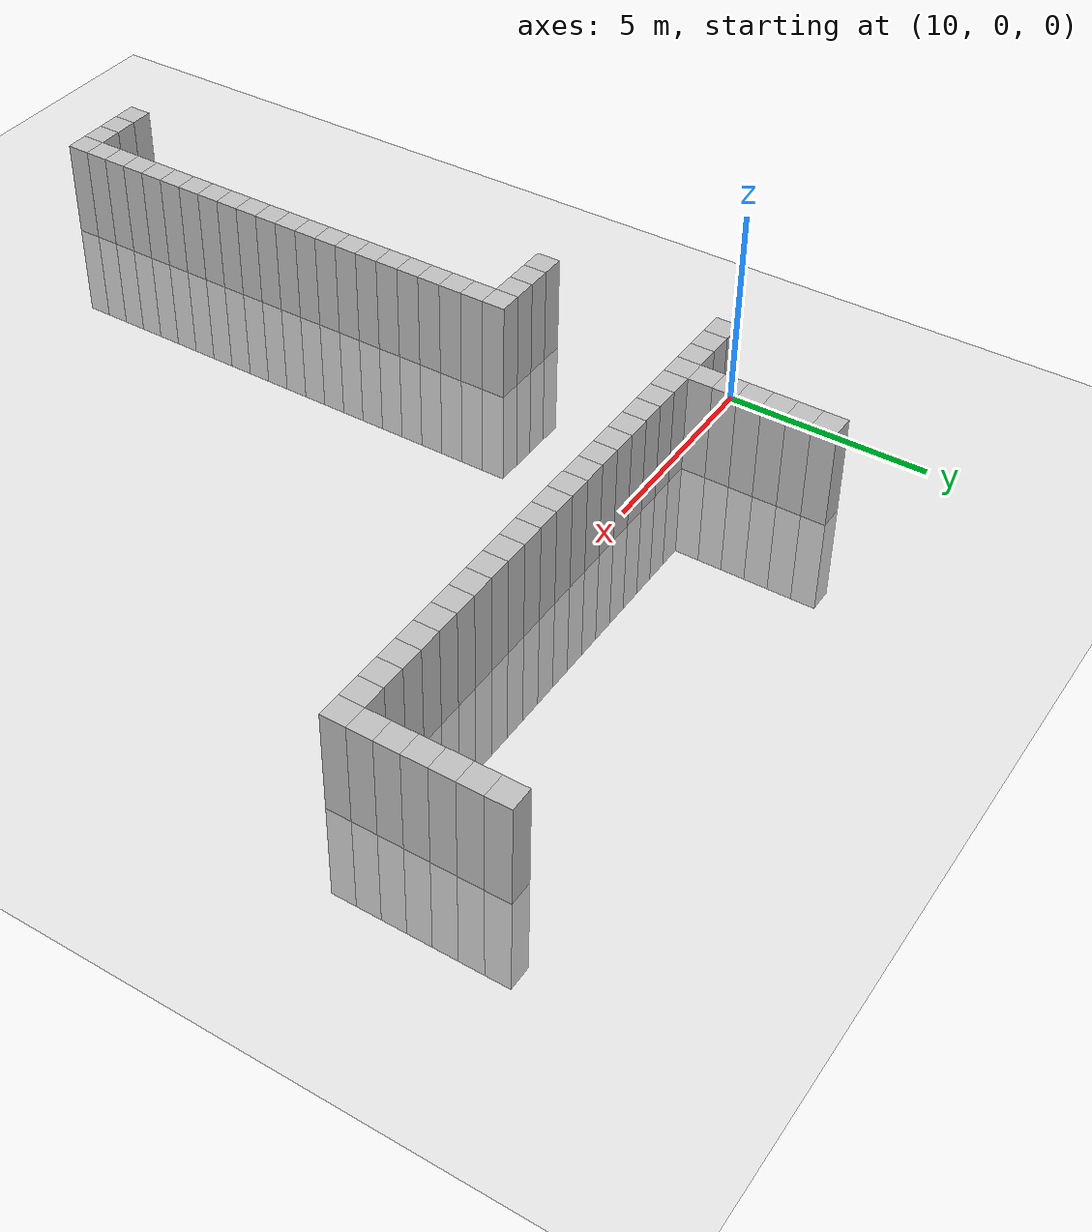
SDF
<sdf version="1.6">
 <world name="default">
  <model name="ground_plane">
   <static>1</static>
   <link name="link">
    <collision name="collision">
     <geometry><plane><normal>0 0 1</normal><size>100 100</size></plane></geometry>
     <surface><friction><ode><mu>100</mu><mu2>50</mu2></ode></friction></surface>
    </collision>
    <visual name="visual">
     <cast_shadows>0</cast_shadows>
     <geometry><plane><normal>0 0 1</normal><size>100 100</size></plane></geometry>
     <material>
      <script><uri>file://media/materials/scripts/gazebo.material</uri><name>Gazebo/Grey</name></script>
     </material>
    </visual>
   </link>
  </model>
  <model name="unit_cylinder_94">
   <static>1</static>
   <pose>10.8 0 0 0 -0 0</pose>
   <link name="link">
    <inertial>
     <mass>1</mass>
     <inertia><ixx>0.145833</ixx><ixy>0</ixy><ixz>0</ixz><iyy>0.145833</iyy><iyz>0</iyz><izz>0.125</izz></inertia>
    </inertial>
    <collision name="collision"><geometry><box><size>0.6 0.6 5</size></box></geometry></collision>
    <visual name="visual">
     <geometry><box><size>0.6 0.6 5</size></box></geometry>
     <material><ambient>0.753 0.753 0.753 1</ambient><diffuse>0.753 0.753 0.753 1</diffuse></material>
     <material>
      <script><name>Gazebo/Grey</name><uri>file://media/materials/scripts/gazebo.material</uri></script>
     </material>
    </visual>
   </link>
  </model>
  <model name="unit_cylinder_97">
   <static>1</static>
   <pose>11.4 0 0 0 -0 0</pose>
   <link name="link">
    <inertial>
     <mass>1</mass>
     <inertia><ixx>0.145833</ixx><ixy>0</ixy><ixz>0</ixz><iyy>0.145833</iyy><iyz>0</iyz><izz>0.125</izz></inertia>
    </inertial>
    <collision name="collision"><geometry><box><size>0.6 0.6 5</size></box></geometry></collision>
    <visual name="visual">
     <geometry><box><size>0.6 0.6 5</size></box></geometry>
     <material><ambient>0.753 0.753 0.753 1</ambient><diffuse>0.753 0.753 0.753 1</diffuse></material>
     <material>
      <script><name>Gazebo/Grey</name><uri>file://media/materials/scripts/gazebo.material</uri></script>
     </material>
    </visual>
   </link>
  </model>
  <model name="unit_cylinder_100">
   <static>1</static>
   <pose>12 0 0 0 -0 0</pose>
   <link name="link">
    <inertial>
     <mass>1</mass>
     <inertia><ixx>0.145833</ixx><ixy>0</ixy><ixz>0</ixz><iyy>0.145833</iyy><iyz>0</iyz><izz>0.125</izz></inertia>
    </inertial>
    <collision name="collision"><geometry><box><size>0.6 0.6 5</size></box></geometry></collision>
    <visual name="visual">
     <geometry><box><size>0.6 0.6 5</size></box></geometry>
     <material><ambient>0.753 0.753 0.753 1</ambient><diffuse>0.753 0.753 0.753 1</diffuse></material>
     <material>
      <script><name>Gazebo/Grey</name><uri>file://media/materials/scripts/gazebo.material</uri></script>
     </material>
    </visual>
   </link>
  </model>
  <model name="unit_cylinder_103">
   <static>1</static>
   <pose>12.6 0 0 0 -0 0</pose>
   <link name="link">
    <inertial>
     <mass>1</mass>
     <inertia><ixx>0.145833</ixx><ixy>0</ixy><ixz>0</ixz><iyy>0.145833</iyy><iyz>0</iyz><izz>0.125</izz></inertia>
    </inertial>
    <collision name="collision"><geometry><box><size>0.6 0.6 5</size></box></geometry></collision>
    <visual name="visual">
     <geometry><box><size>0.6 0.6 5</size></box></geometry>
     <material><ambient>0.753 0.753 0.753 1</ambient><diffuse>0.753 0.753 0.753 1</diffuse></material>
     <material>
      <script><name>Gazebo/Grey</name><uri>file://media/materials/scripts/gazebo.material</uri></script>
     </material>
    </visual>
   </link>
  </model>
  <model name="unit_cylinder_104">
   <static>1</static>
   <pose>12.6 0.6 0 0 -0 0</pose>
   <link name="link">
    <inertial>
     <mass>1</mass>
     <inertia><ixx>0.145833</ixx><ixy>0</ixy><ixz>0</ixz><iyy>0.145833</iyy><iyz>0</iyz><izz>0.125</izz></inertia>
    </inertial>
    <collision name="collision"><geometry><box><size>0.6 0.6 5</size></box></geometry></collision>
    <visual name="visual">
     <geometry><box><size>0.6 0.6 5</size></box></geometry>
     <material><ambient>0.753 0.753 0.753 1</ambient><diffuse>0.753 0.753 0.753 1</diffuse></material>
     <material>
      <script><name>Gazebo/Grey</name><uri>file://media/materials/scripts/gazebo.material</uri></script>
     </material>
    </visual>
   </link>
  </model>
  <model name="unit_cylinder_105">
   <static>1</static>
   <pose>12.6 1.2 0 0 -0 0</pose>
   <link name="link">
    <inertial>
     <mass>1</mass>
     <inertia><ixx>0.145833</ixx><ixy>0</ixy><ixz>0</ixz><iyy>0.145833</iyy><iyz>0</iyz><izz>0.125</izz></inertia>
    </inertial>
    <collision name="collision"><geometry><box><size>0.6 0.6 5</size></box></geometry></collision>
    <visual name="visual">
     <geometry><box><size>0.6 0.6 5</size></box></geometry>
     <material><ambient>0.753 0.753 0.753 1</ambient><diffuse>0.753 0.753 0.753 1</diffuse></material>
     <material>
      <script><name>Gazebo/Grey</name><uri>file://media/materials/scripts/gazebo.material</uri></script>
     </material>
    </visual>
   </link>
  </model>
  <model name="unit_cylinder_106">
   <static>1</static>
   <pose>12.6 1.8 0 0 -0 0</pose>
   <link name="link">
    <inertial>
     <mass>1</mass>
     <inertia><ixx>0.145833</ixx><ixy>0</ixy><ixz>0</ixz><iyy>0.145833</iyy><iyz>0</iyz><izz>0.125</izz></inertia>
    </inertial>
    <collision name="collision"><geometry><box><size>0.6 0.6 5</size></box></geometry></collision>
    <visual name="visual">
     <geometry><box><size>0.6 0.6 5</size></box></geometry>
     <material><ambient>0.753 0.753 0.753 1</ambient><diffuse>0.753 0.753 0.753 1</diffuse></material>
     <material>
      <script><name>Gazebo/Grey</name><uri>file://media/materials/scripts/gazebo.material</uri></script>
     </material>
    </visual>
   </link>
  </model>
  <model name="unit_cylinder_107">
   <static>1</static>
   <pose>12.6 2.4 0 0 -0 0</pose>
   <link name="link">
    <inertial>
     <mass>1</mass>
     <inertia><ixx>0.145833</ixx><ixy>0</ixy><ixz>0</ixz><iyy>0.145833</iyy><iyz>0</iyz><izz>0.125</izz></inertia>
    </inertial>
    <collision name="collision"><geometry><box><size>0.6 0.6 5</size></box></geometry></collision>
    <visual name="visual">
     <geometry><box><size>0.6 0.6 5</size></box></geometry>
     <material><ambient>0.753 0.753 0.753 1</ambient><diffuse>0.753 0.753 0.753 1</diffuse></material>
     <material>
      <script><name>Gazebo/Grey</name><uri>file://media/materials/scripts/gazebo.material</uri></script>
     </material>
    </visual>
   </link>
  </model>
  <model name="unit_cylinder_108">
   <static>1</static>
   <pose>12.6 3 0 0 -0 0</pose>
   <link name="link">
    <inertial>
     <mass>1</mass>
     <inertia><ixx>0.145833</ixx><ixy>0</ixy><ixz>0</ixz><iyy>0.145833</iyy><iyz>0</iyz><izz>0.125</izz></inertia>
    </inertial>
    <collision name="collision"><geometry><box><size>0.6 0.6 5</size></box></geometry></collision>
    <visual name="visual">
     <geometry><box><size>0.6 0.6 5</size></box></geometry>
     <material><ambient>0.753 0.753 0.753 1</ambient><diffuse>0.753 0.753 0.753 1</diffuse></material>
     <material>
      <script><name>Gazebo/Grey</name><uri>file://media/materials/scripts/gazebo.material</uri></script>
     </material>
    </visual>
   </link>
  </model>
  <model name="unit_cylinder_109">
   <static>1</static>
   <pose>12.6 3.6 0 0 -0 0</pose>
   <link name="link">
    <inertial>
     <mass>1</mass>
     <inertia><ixx>0.145833</ixx><ixy>0</ixy><ixz>0</ixz><iyy>0.145833</iyy><iyz>0</iyz><izz>0.125</izz></inertia>
    </inertial>
    <collision name="collision"><geometry><box><size>0.6 0.6 5</size></box></geometry></collision>
    <visual name="visual">
     <geometry><box><size>0.6 0.6 5</size></box></geometry>
     <material><ambient>0.753 0.753 0.753 1</ambient><diffuse>0.753 0.753 0.753 1</diffuse></material>
     <material>
      <script><name>Gazebo/Grey</name><uri>file://media/materials/scripts/gazebo.material</uri></script>
     </material>
    </visual>
   </link>
  </model>
  <model name="unit_cylinder_146">
   <static>1</static>
   <pose>13.2 0 0 0 -0 0</pose>
   <link name="link">
    <inertial>
     <mass>1</mass>
     <inertia><ixx>0.145833</ixx><ixy>0</ixy><ixz>0</ixz><iyy>0.145833</iyy><iyz>0</iyz><izz>0.125</izz></inertia>
    </inertial>
    <collision name="collision"><geometry><box><size>0.6 0.6 5</size></box></geometry></collision>
    <visual name="visual">
     <geometry><box><size>0.6 0.6 5</size></box></geometry>
     <material><ambient>0.753 0.753 0.753 1</ambient><diffuse>0.753 0.753 0.753 1</diffuse></material>
     <material>
      <script><name>Gazebo/Grey</name><uri>file://media/materials/scripts/gazebo.material</uri></script>
     </material>
    </visual>
   </link>
  </model>
  <model name="unit_cylinder_149">
   <static>1</static>
   <pose>13.8 0 0 0 -0 0</pose>
   <link name="link">
    <inertial>
     <mass>1</mass>
     <inertia><ixx>0.145833</ixx><ixy>0</ixy><ixz>0</ixz><iyy>0.145833</iyy><iyz>0</iyz><izz>0.125</izz></inertia>
    </inertial>
    <collision name="collision"><geometry><box><size>0.6 0.6 5</size></box></geometry></collision>
    <visual name="visual">
     <geometry><box><size>0.6 0.6 5</size></box></geometry>
     <material><ambient>0.753 0.753 0.753 1</ambient><diffuse>0.753 0.753 0.753 1</diffuse></material>
     <material>
      <script><name>Gazebo/Grey</name><uri>file://media/materials/scripts/gazebo.material</uri></script>
     </material>
    </visual>
   </link>
  </model>
  <model name="unit_cylinder_152">
   <static>1</static>
   <pose>14.4 0 0 0 -0 0</pose>
   <link name="link">
    <inertial>
     <mass>1</mass>
     <inertia><ixx>0.145833</ixx><ixy>0</ixy><ixz>0</ixz><iyy>0.145833</iyy><iyz>0</iyz><izz>0.125</izz></inertia>
    </inertial>
    <collision name="collision"><geometry><box><size>0.6 0.6 5</size></box></geometry></collision>
    <visual name="visual">
     <geometry><box><size>0.6 0.6 5</size></box></geometry>
     <material><ambient>0.753 0.753 0.753 1</ambient><diffuse>0.753 0.753 0.753 1</diffuse></material>
     <material>
      <script><name>Gazebo/Grey</name><uri>file://media/materials/scripts/gazebo.material</uri></script>
     </material>
    </visual>
   </link>
  </model>
  <model name="unit_cylinder_155">
   <static>1</static>
   <pose>15 0 0 0 -0 0</pose>
   <link name="link">
    <inertial>
     <mass>1</mass>
     <inertia><ixx>0.145833</ixx><ixy>0</ixy><ixz>0</ixz><iyy>0.145833</iyy><iyz>0</iyz><izz>0.125</izz></inertia>
    </inertial>
    <collision name="collision"><geometry><box><size>0.6 0.6 5</size></box></geometry></collision>
    <visual name="visual">
     <geometry><box><size>0.6 0.6 5</size></box></geometry>
     <material><ambient>0.753 0.753 0.753 1</ambient><diffuse>0.753 0.753 0.753 1</diffuse></material>
     <material>
      <script><name>Gazebo/Grey</name><uri>file://media/materials/scripts/gazebo.material</uri></script>
     </material>
    </visual>
   </link>
  </model>
  <model name="unit_cylinder_158">
   <static>1</static>
   <pose>15.6 0 0 0 -0 0</pose>
   <link name="link">
    <inertial>
     <mass>1</mass>
     <inertia><ixx>0.145833</ixx><ixy>0</ixy><ixz>0</ixz><iyy>0.145833</iyy><iyz>0</iyz><izz>0.125</izz></inertia>
    </inertial>
    <collision name="collision"><geometry><box><size>0.6 0.6 5</size></box></geometry></collision>
    <visual name="visual">
     <geometry><box><size>0.6 0.6 5</size></box></geometry>
     <material><ambient>0.753 0.753 0.753 1</ambient><diffuse>0.753 0.753 0.753 1</diffuse></material>
     <material>
      <script><name>Gazebo/Grey</name><uri>file://media/materials/scripts/gazebo.material</uri></script>
     </material>
    </visual>
   </link>
  </model>
  <model name="unit_cylinder_161">
   <static>1</static>
   <pose>16.2 0 0 0 -0 0</pose>
   <link name="link">
    <inertial>
     <mass>1</mass>
     <inertia><ixx>0.145833</ixx><ixy>0</ixy><ixz>0</ixz><iyy>0.145833</iyy><iyz>0</iyz><izz>0.125</izz></inertia>
    </inertial>
    <collision name="collision"><geometry><box><size>0.6 0.6 5</size></box></geometry></collision>
    <visual name="visual">
     <geometry><box><size>0.6 0.6 5</size></box></geometry>
     <material><ambient>0.753 0.753 0.753 1</ambient><diffuse>0.753 0.753 0.753 1</diffuse></material>
     <material>
      <script><name>Gazebo/Grey</name><uri>file://media/materials/scripts/gazebo.material</uri></script>
     </material>
    </visual>
   </link>
  </model>
  <model name="unit_cylinder_164">
   <static>1</static>
   <pose>16.8 0 0 0 -0 0</pose>
   <link name="link">
    <inertial>
     <mass>1</mass>
     <inertia><ixx>0.145833</ixx><ixy>0</ixy><ixz>0</ixz><iyy>0.145833</iyy><iyz>0</iyz><izz>0.125</izz></inertia>
    </inertial>
    <collision name="collision"><geometry><box><size>0.6 0.6 5</size></box></geometry></collision>
    <visual name="visual">
     <geometry><box><size>0.6 0.6 5</size></box></geometry>
     <material><ambient>0.753 0.753 0.753 1</ambient><diffuse>0.753 0.753 0.753 1</diffuse></material>
     <material>
      <script><name>Gazebo/Grey</name><uri>file://media/materials/scripts/gazebo.material</uri></script>
     </material>
    </visual>
   </link>
  </model>
  <model name="unit_cylinder_167">
   <static>1</static>
   <pose>17.4 0 0 0 -0 0</pose>
   <link name="link">
    <inertial>
     <mass>1</mass>
     <inertia><ixx>0.145833</ixx><ixy>0</ixy><ixz>0</ixz><iyy>0.145833</iyy><iyz>0</iyz><izz>0.125</izz></inertia>
    </inertial>
    <collision name="collision"><geometry><box><size>0.6 0.6 5</size></box></geometry></collision>
    <visual name="visual">
     <geometry><box><size>0.6 0.6 5</size></box></geometry>
     <material><ambient>0.753 0.753 0.753 1</ambient><diffuse>0.753 0.753 0.753 1</diffuse></material>
     <material>
      <script><name>Gazebo/Grey</name><uri>file://media/materials/scripts/gazebo.material</uri></script>
     </material>
    </visual>
   </link>
  </model>
  <model name="unit_cylinder_170">
   <static>1</static>
   <pose>18 0 0 0 -0 0</pose>
   <link name="link">
    <inertial>
     <mass>1</mass>
     <inertia><ixx>0.145833</ixx><ixy>0</ixy><ixz>0</ixz><iyy>0.145833</iyy><iyz>0</iyz><izz>0.125</izz></inertia>
    </inertial>
    <collision name="collision"><geometry><box><size>0.6 0.6 5</size></box></geometry></collision>
    <visual name="visual">
     <geometry><box><size>0.6 0.6 5</size></box></geometry>
     <material><ambient>0.753 0.753 0.753 1</ambient><diffuse>0.753 0.753 0.753 1</diffuse></material>
     <material>
      <script><name>Gazebo/Grey</name><uri>file://media/materials/scripts/gazebo.material</uri></script>
     </material>
    </visual>
   </link>
  </model>
  <model name="unit_cylinder_173">
   <static>1</static>
   <pose>18.6 0 0 0 -0 0</pose>
   <link name="link">
    <inertial>
     <mass>1</mass>
     <inertia><ixx>0.145833</ixx><ixy>0</ixy><ixz>0</ixz><iyy>0.145833</iyy><iyz>0</iyz><izz>0.125</izz></inertia>
    </inertial>
    <collision name="collision"><geometry><box><size>0.6 0.6 5</size></box></geometry></collision>
    <visual name="visual">
     <geometry><box><size>0.6 0.6 5</size></box></geometry>
     <material><ambient>0.753 0.753 0.753 1</ambient><diffuse>0.753 0.753 0.753 1</diffuse></material>
     <material>
      <script><name>Gazebo/Grey</name><uri>file://media/materials/scripts/gazebo.material</uri></script>
     </material>
    </visual>
   </link>
  </model>
  <model name="unit_cylinder_176">
   <static>1</static>
   <pose>19.2 0 0 0 -0 0</pose>
   <link name="link">
    <inertial>
     <mass>1</mass>
     <inertia><ixx>0.145833</ixx><ixy>0</ixy><ixz>0</ixz><iyy>0.145833</iyy><iyz>0</iyz><izz>0.125</izz></inertia>
    </inertial>
    <collision name="collision"><geometry><box><size>0.6 0.6 5</size></box></geometry></collision>
    <visual name="visual">
     <geometry><box><size>0.6 0.6 5</size></box></geometry>
     <material><ambient>0.753 0.753 0.753 1</ambient><diffuse>0.753 0.753 0.753 1</diffuse></material>
     <material>
      <script><name>Gazebo/Grey</name><uri>file://media/materials/scripts/gazebo.material</uri></script>
     </material>
    </visual>
   </link>
  </model>
  <model name="unit_cylinder_179">
   <static>1</static>
   <pose>19.8 0 0 0 -0 0</pose>
   <link name="link">
    <inertial>
     <mass>1</mass>
     <inertia><ixx>0.145833</ixx><ixy>0</ixy><ixz>0</ixz><iyy>0.145833</iyy><iyz>0</iyz><izz>0.125</izz></inertia>
    </inertial>
    <collision name="collision"><geometry><box><size>0.6 0.6 5</size></box></geometry></collision>
    <visual name="visual">
     <geometry><box><size>0.6 0.6 5</size></box></geometry>
     <material><ambient>0.753 0.753 0.753 1</ambient><diffuse>0.753 0.753 0.753 1</diffuse></material>
     <material>
      <script><name>Gazebo/Grey</name><uri>file://media/materials/scripts/gazebo.material</uri></script>
     </material>
    </visual>
   </link>
  </model>
  <model name="unit_cylinder_182">
   <static>1</static>
   <pose>20.4 0 0 0 -0 0</pose>
   <link name="link">
    <inertial>
     <mass>1</mass>
     <inertia><ixx>0.145833</ixx><ixy>0</ixy><ixz>0</ixz><iyy>0.145833</iyy><iyz>0</iyz><izz>0.125</izz></inertia>
    </inertial>
    <collision name="collision"><geometry><box><size>0.6 0.6 5</size></box></geometry></collision>
    <visual name="visual">
     <geometry><box><size>0.6 0.6 5</size></box></geometry>
     <material><ambient>0.753 0.753 0.753 1</ambient><diffuse>0.753 0.753 0.753 1</diffuse></material>
     <material>
      <script><name>Gazebo/Grey</name><uri>file://media/materials/scripts/gazebo.material</uri></script>
     </material>
    </visual>
   </link>
  </model>
  <model name="unit_cylinder_185">
   <static>1</static>
   <pose>21 0 0 0 -0 0</pose>
   <link name="link">
    <inertial>
     <mass>1</mass>
     <inertia><ixx>0.145833</ixx><ixy>0</ixy><ixz>0</ixz><iyy>0.145833</iyy><iyz>0</iyz><izz>0.125</izz></inertia>
    </inertial>
    <collision name="collision"><geometry><box><size>0.6 0.6 5</size></box></geometry></collision>
    <visual name="visual">
     <geometry><box><size>0.6 0.6 5</size></box></geometry>
     <material><ambient>0.753 0.753 0.753 1</ambient><diffuse>0.753 0.753 0.753 1</diffuse></material>
     <material>
      <script><name>Gazebo/Grey</name><uri>file://media/materials/scripts/gazebo.material</uri></script>
     </material>
    </visual>
   </link>
  </model>
  <model name="unit_cylinder_188">
   <static>1</static>
   <pose>21.6 0 0 0 -0 0</pose>
   <link name="link">
    <inertial>
     <mass>1</mass>
     <inertia><ixx>0.145833</ixx><ixy>0</ixy><ixz>0</ixz><iyy>0.145833</iyy><iyz>0</iyz><izz>0.125</izz></inertia>
    </inertial>
    <collision name="collision"><geometry><box><size>0.6 0.6 5</size></box></geometry></collision>
    <visual name="visual">
     <geometry><box><size>0.6 0.6 5</size></box></geometry>
     <material><ambient>0.753 0.753 0.753 1</ambient><diffuse>0.753 0.753 0.753 1</diffuse></material>
     <material>
      <script><name>Gazebo/Grey</name><uri>file://media/materials/scripts/gazebo.material</uri></script>
     </material>
    </visual>
   </link>
  </model>
  <model name="unit_cylinder_191">
   <static>1</static>
   <pose>22.2 0 0 0 -0 0</pose>
   <link name="link">
    <inertial>
     <mass>1</mass>
     <inertia><ixx>0.145833</ixx><ixy>0</ixy><ixz>0</ixz><iyy>0.145833</iyy><iyz>0</iyz><izz>0.125</izz></inertia>
    </inertial>
    <collision name="collision"><geometry><box><size>0.6 0.6 5</size></box></geometry></collision>
    <visual name="visual">
     <geometry><box><size>0.6 0.6 5</size></box></geometry>
     <material><ambient>0.753 0.753 0.753 1</ambient><diffuse>0.753 0.753 0.753 1</diffuse></material>
     <material>
      <script><name>Gazebo/Grey</name><uri>file://media/materials/scripts/gazebo.material</uri></script>
     </material>
    </visual>
   </link>
  </model>
  <model name="unit_cylinder_194">
   <static>1</static>
   <pose>22.8 0 0 0 -0 0</pose>
   <link name="link">
    <inertial>
     <mass>1</mass>
     <inertia><ixx>0.145833</ixx><ixy>0</ixy><ixz>0</ixz><iyy>0.145833</iyy><iyz>0</iyz><izz>0.125</izz></inertia>
    </inertial>
    <collision name="collision"><geometry><box><size>0.6 0.6 5</size></box></geometry></collision>
    <visual name="visual">
     <geometry><box><size>0.6 0.6 5</size></box></geometry>
     <material><ambient>0.753 0.753 0.753 1</ambient><diffuse>0.753 0.753 0.753 1</diffuse></material>
     <material>
      <script><name>Gazebo/Grey</name><uri>file://media/materials/scripts/gazebo.material</uri></script>
     </material>
    </visual>
   </link>
  </model>
  <model name="unit_cylinder_197">
   <static>1</static>
   <pose>23.4 0 0 0 -0 0</pose>
   <link name="link">
    <inertial>
     <mass>1</mass>
     <inertia><ixx>0.145833</ixx><ixy>0</ixy><ixz>0</ixz><iyy>0.145833</iyy><iyz>0</iyz><izz>0.125</izz></inertia>
    </inertial>
    <collision name="collision"><geometry><box><size>0.6 0.6 5</size></box></geometry></collision>
    <visual name="visual">
     <geometry><box><size>0.6 0.6 5</size></box></geometry>
     <material><ambient>0.753 0.753 0.753 1</ambient><diffuse>0.753 0.753 0.753 1</diffuse></material>
     <material>
      <script><name>Gazebo/Grey</name><uri>file://media/materials/scripts/gazebo.material</uri></script>
     </material>
    </visual>
   </link>
  </model>
  <model name="unit_cylinder_200">
   <static>1</static>
   <pose>24 0 0 0 -0 0</pose>
   <link name="link">
    <inertial>
     <mass>1</mass>
     <inertia><ixx>0.145833</ixx><ixy>0</ixy><ixz>0</ixz><iyy>0.145833</iyy><iyz>0</iyz><izz>0.125</izz></inertia>
    </inertial>
    <collision name="collision"><geometry><box><size>0.6 0.6 5</size></box></geometry></collision>
    <visual name="visual">
     <geometry><box><size>0.6 0.6 5</size></box></geometry>
     <material><ambient>0.753 0.753 0.753 1</ambient><diffuse>0.753 0.753 0.753 1</diffuse></material>
     <material>
      <script><name>Gazebo/Grey</name><uri>file://media/materials/scripts/gazebo.material</uri></script>
     </material>
    </visual>
   </link>
  </model>
  <model name="unit_cylinder_203">
   <static>1</static>
   <pose>24.6 0 0 0 -0 0</pose>
   <link name="link">
    <inertial>
     <mass>1</mass>
     <inertia><ixx>0.145833</ixx><ixy>0</ixy><ixz>0</ixz><iyy>0.145833</iyy><iyz>0</iyz><izz>0.125</izz></inertia>
    </inertial>
    <collision name="collision"><geometry><box><size>0.6 0.6 5</size></box></geometry></collision>
    <visual name="visual">
     <geometry><box><size>0.6 0.6 5</size></box></geometry>
     <material><ambient>0.753 0.753 0.753 1</ambient><diffuse>0.753 0.753 0.753 1</diffuse></material>
     <material>
      <script><name>Gazebo/Grey</name><uri>file://media/materials/scripts/gazebo.material</uri></script>
     </material>
    </visual>
   </link>
  </model>
  <model name="unit_cylinder_206">
   <static>1</static>
   <pose>25.2 0 0 0 -0 0</pose>
   <link name="link">
    <inertial>
     <mass>1</mass>
     <inertia><ixx>0.145833</ixx><ixy>0</ixy><ixz>0</ixz><iyy>0.145833</iyy><iyz>0</iyz><izz>0.125</izz></inertia>
    </inertial>
    <collision name="collision"><geometry><box><size>0.6 0.6 5</size></box></geometry></collision>
    <visual name="visual">
     <geometry><box><size>0.6 0.6 5</size></box></geometry>
     <material><ambient>0.753 0.753 0.753 1</ambient><diffuse>0.753 0.753 0.753 1</diffuse></material>
     <material>
      <script><name>Gazebo/Grey</name><uri>file://media/materials/scripts/gazebo.material</uri></script>
     </material>
    </visual>
   </link>
  </model>
  <model name="unit_cylinder_207">
   <static>1</static>
   <pose>25.2 0.6 0 0 -0 0</pose>
   <link name="link">
    <inertial>
     <mass>1</mass>
     <inertia><ixx>0.145833</ixx><ixy>0</ixy><ixz>0</ixz><iyy>0.145833</iyy><iyz>0</iyz><izz>0.125</izz></inertia>
    </inertial>
    <collision name="collision"><geometry><box><size>0.6 0.6 5</size></box></geometry></collision>
    <visual name="visual">
     <geometry><box><size>0.6 0.6 5</size></box></geometry>
     <material><ambient>0.753 0.753 0.753 1</ambient><diffuse>0.753 0.753 0.753 1</diffuse></material>
     <material>
      <script><name>Gazebo/Grey</name><uri>file://media/materials/scripts/gazebo.material</uri></script>
     </material>
    </visual>
   </link>
  </model>
  <model name="unit_cylinder_208">
   <static>1</static>
   <pose>25.2 1.2 0 0 -0 0</pose>
   <link name="link">
    <inertial>
     <mass>1</mass>
     <inertia><ixx>0.145833</ixx><ixy>0</ixy><ixz>0</ixz><iyy>0.145833</iyy><iyz>0</iyz><izz>0.125</izz></inertia>
    </inertial>
    <collision name="collision"><geometry><box><size>0.6 0.6 5</size></box></geometry></collision>
    <visual name="visual">
     <geometry><box><size>0.6 0.6 5</size></box></geometry>
     <material><ambient>0.753 0.753 0.753 1</ambient><diffuse>0.753 0.753 0.753 1</diffuse></material>
     <material>
      <script><name>Gazebo/Grey</name><uri>file://media/materials/scripts/gazebo.material</uri></script>
     </material>
    </visual>
   </link>
  </model>
  <model name="unit_cylinder_209">
   <static>1</static>
   <pose>25.2 1.8 0 0 -0 0</pose>
   <link name="link">
    <inertial>
     <mass>1</mass>
     <inertia><ixx>0.145833</ixx><ixy>0</ixy><ixz>0</ixz><iyy>0.145833</iyy><iyz>0</iyz><izz>0.125</izz></inertia>
    </inertial>
    <collision name="collision"><geometry><box><size>0.6 0.6 5</size></box></geometry></collision>
    <visual name="visual">
     <geometry><box><size>0.6 0.6 5</size></box></geometry>
     <material><ambient>0.753 0.753 0.753 1</ambient><diffuse>0.753 0.753 0.753 1</diffuse></material>
     <material>
      <script><name>Gazebo/Grey</name><uri>file://media/materials/scripts/gazebo.material</uri></script>
     </material>
    </visual>
   </link>
  </model>
  <model name="unit_cylinder_210">
   <static>1</static>
   <pose>25.2 2.4 0 0 -0 0</pose>
   <link name="link">
    <inertial>
     <mass>1</mass>
     <inertia><ixx>0.145833</ixx><ixy>0</ixy><ixz>0</ixz><iyy>0.145833</iyy><iyz>0</iyz><izz>0.125</izz></inertia>
    </inertial>
    <collision name="collision"><geometry><box><size>0.6 0.6 5</size></box></geometry></collision>
    <visual name="visual">
     <geometry><box><size>0.6 0.6 5</size></box></geometry>
     <material><ambient>0.753 0.753 0.753 1</ambient><diffuse>0.753 0.753 0.753 1</diffuse></material>
     <material>
      <script><name>Gazebo/Grey</name><uri>file://media/materials/scripts/gazebo.material</uri></script>
     </material>
    </visual>
   </link>
  </model>
  <model name="unit_cylinder_211">
   <static>1</static>
   <pose>25.2 3 0 0 -0 0</pose>
   <link name="link">
    <inertial>
     <mass>1</mass>
     <inertia><ixx>0.145833</ixx><ixy>0</ixy><ixz>0</ixz><iyy>0.145833</iyy><iyz>0</iyz><izz>0.125</izz></inertia>
    </inertial>
    <collision name="collision"><geometry><box><size>0.6 0.6 5</size></box></geometry></collision>
    <visual name="visual">
     <geometry><box><size>0.6 0.6 5</size></box></geometry>
     <material><ambient>0.753 0.753 0.753 1</ambient><diffuse>0.753 0.753 0.753 1</diffuse></material>
     <material>
      <script><name>Gazebo/Grey</name><uri>file://media/materials/scripts/gazebo.material</uri></script>
     </material>
    </visual>
   </link>
  </model>
  <model name="unit_cylinder_212">
   <static>1</static>
   <pose>25.2 3.6 0 0 -0 0</pose>
   <link name="link">
    <inertial>
     <mass>1</mass>
     <inertia><ixx>0.145833</ixx><ixy>0</ixy><ixz>0</ixz><iyy>0.145833</iyy><iyz>0</iyz><izz>0.125</izz></inertia>
    </inertial>
    <collision name="collision"><geometry><box><size>0.6 0.6 5</size></box></geometry></collision>
    <visual name="visual">
     <geometry><box><size>0.6 0.6 5</size></box></geometry>
     <material><ambient>0.753 0.753 0.753 1</ambient><diffuse>0.753 0.753 0.753 1</diffuse></material>
     <material>
      <script><name>Gazebo/Grey</name><uri>file://media/materials/scripts/gazebo.material</uri></script>
     </material>
    </visual>
   </link>
  </model>
  <model name="unit_cylinder_782">
   <static>1</static>
   <pose>10.8 -17.4 0 0 -0 0</pose>
   <link name="link">
    <inertial>
     <mass>1</mass>
     <inertia><ixx>0.145833</ixx><ixy>0</ixy><ixz>0</ixz><iyy>0.145833</iyy><iyz>0</iyz><izz>0.125</izz></inertia>
    </inertial>
    <collision name="collision"><geometry><box><size>0.6 0.6 5</size></box></geometry></collision>
    <visual name="visual">
     <geometry><box><size>0.6 0.6 5</size></box></geometry>
     <material><ambient>0.753 0.753 0.753 1</ambient><diffuse>0.753 0.753 0.753 1</diffuse></material>
     <material>
      <script><name>Gazebo/Grey</name><uri>file://media/materials/scripts/gazebo.material</uri></script>
     </material>
    </visual>
   </link>
  </model>
  <model name="unit_cylinder_783">
   <static>1</static>
   <pose>10.8 -4.8 0 0 -0 0</pose>
   <link name="link">
    <inertial>
     <mass>1</mass>
     <inertia><ixx>0.145833</ixx><ixy>0</ixy><ixz>0</ixz><iyy>0.145833</iyy><iyz>0</iyz><izz>0.125</izz></inertia>
    </inertial>
    <collision name="collision"><geometry><box><size>0.6 0.6 5</size></box></geometry></collision>
    <visual name="visual">
     <geometry><box><size>0.6 0.6 5</size></box></geometry>
     <material><ambient>0.753 0.753 0.753 1</ambient><diffuse>0.753 0.753 0.753 1</diffuse></material>
     <material>
      <script><name>Gazebo/Grey</name><uri>file://media/materials/scripts/gazebo.material</uri></script>
     </material>
    </visual>
   </link>
  </model>
  <model name="unit_cylinder_785">
   <static>1</static>
   <pose>11.4 -17.4 0 0 -0 0</pose>
   <link name="link">
    <inertial>
     <mass>1</mass>
     <inertia><ixx>0.145833</ixx><ixy>0</ixy><ixz>0</ixz><iyy>0.145833</iyy><iyz>0</iyz><izz>0.125</izz></inertia>
    </inertial>
    <collision name="collision"><geometry><box><size>0.6 0.6 5</size></box></geometry></collision>
    <visual name="visual">
     <geometry><box><size>0.6 0.6 5</size></box></geometry>
     <material><ambient>0.753 0.753 0.753 1</ambient><diffuse>0.753 0.753 0.753 1</diffuse></material>
     <material>
      <script><name>Gazebo/Grey</name><uri>file://media/materials/scripts/gazebo.material</uri></script>
     </material>
    </visual>
   </link>
  </model>
  <model name="unit_cylinder_786">
   <static>1</static>
   <pose>11.4 -4.8 0 0 -0 0</pose>
   <link name="link">
    <inertial>
     <mass>1</mass>
     <inertia><ixx>0.145833</ixx><ixy>0</ixy><ixz>0</ixz><iyy>0.145833</iyy><iyz>0</iyz><izz>0.125</izz></inertia>
    </inertial>
    <collision name="collision"><geometry><box><size>0.6 0.6 5</size></box></geometry></collision>
    <visual name="visual">
     <geometry><box><size>0.6 0.6 5</size></box></geometry>
     <material><ambient>0.753 0.753 0.753 1</ambient><diffuse>0.753 0.753 0.753 1</diffuse></material>
     <material>
      <script><name>Gazebo/Grey</name><uri>file://media/materials/scripts/gazebo.material</uri></script>
     </material>
    </visual>
   </link>
  </model>
  <model name="unit_cylinder_788">
   <static>1</static>
   <pose>12 -17.4 0 0 -0 0</pose>
   <link name="link">
    <inertial>
     <mass>1</mass>
     <inertia><ixx>0.145833</ixx><ixy>0</ixy><ixz>0</ixz><iyy>0.145833</iyy><iyz>0</iyz><izz>0.125</izz></inertia>
    </inertial>
    <collision name="collision"><geometry><box><size>0.6 0.6 5</size></box></geometry></collision>
    <visual name="visual">
     <geometry><box><size>0.6 0.6 5</size></box></geometry>
     <material><ambient>0.753 0.753 0.753 1</ambient><diffuse>0.753 0.753 0.753 1</diffuse></material>
     <material>
      <script><name>Gazebo/Grey</name><uri>file://media/materials/scripts/gazebo.material</uri></script>
     </material>
    </visual>
   </link>
  </model>
  <model name="unit_cylinder_789">
   <static>1</static>
   <pose>12 -4.8 0 0 -0 0</pose>
   <link name="link">
    <inertial>
     <mass>1</mass>
     <inertia><ixx>0.145833</ixx><ixy>0</ixy><ixz>0</ixz><iyy>0.145833</iyy><iyz>0</iyz><izz>0.125</izz></inertia>
    </inertial>
    <collision name="collision"><geometry><box><size>0.6 0.6 5</size></box></geometry></collision>
    <visual name="visual">
     <geometry><box><size>0.6 0.6 5</size></box></geometry>
     <material><ambient>0.753 0.753 0.753 1</ambient><diffuse>0.753 0.753 0.753 1</diffuse></material>
     <material>
      <script><name>Gazebo/Grey</name><uri>file://media/materials/scripts/gazebo.material</uri></script>
     </material>
    </visual>
   </link>
  </model>
  <model name="unit_cylinder_811">
   <static>1</static>
   <pose>12.6 -17.4 0 0 -0 0</pose>
   <link name="link">
    <inertial>
     <mass>1</mass>
     <inertia><ixx>0.145833</ixx><ixy>0</ixy><ixz>0</ixz><iyy>0.145833</iyy><iyz>0</iyz><izz>0.125</izz></inertia>
    </inertial>
    <collision name="collision"><geometry><box><size>0.6 0.6 5</size></box></geometry></collision>
    <visual name="visual">
     <geometry><box><size>0.6 0.6 5</size></box></geometry>
     <material><ambient>0.753 0.753 0.753 1</ambient><diffuse>0.753 0.753 0.753 1</diffuse></material>
     <material>
      <script><name>Gazebo/Grey</name><uri>file://media/materials/scripts/gazebo.material</uri></script>
     </material>
    </visual>
   </link>
  </model>
  <model name="unit_cylinder_812">
   <static>1</static>
   <pose>12.6 -16.8 0 0 -0 0</pose>
   <link name="link">
    <inertial>
     <mass>1</mass>
     <inertia><ixx>0.145833</ixx><ixy>0</ixy><ixz>0</ixz><iyy>0.145833</iyy><iyz>0</iyz><izz>0.125</izz></inertia>
    </inertial>
    <collision name="collision"><geometry><box><size>0.6 0.6 5</size></box></geometry></collision>
    <visual name="visual">
     <geometry><box><size>0.6 0.6 5</size></box></geometry>
     <material><ambient>0.753 0.753 0.753 1</ambient><diffuse>0.753 0.753 0.753 1</diffuse></material>
     <material>
      <script><name>Gazebo/Grey</name><uri>file://media/materials/scripts/gazebo.material</uri></script>
     </material>
    </visual>
   </link>
  </model>
  <model name="unit_cylinder_813">
   <static>1</static>
   <pose>12.6 -16.2 0 0 -0 0</pose>
   <link name="link">
    <inertial>
     <mass>1</mass>
     <inertia><ixx>0.145833</ixx><ixy>0</ixy><ixz>0</ixz><iyy>0.145833</iyy><iyz>0</iyz><izz>0.125</izz></inertia>
    </inertial>
    <collision name="collision"><geometry><box><size>0.6 0.6 5</size></box></geometry></collision>
    <visual name="visual">
     <geometry><box><size>0.6 0.6 5</size></box></geometry>
     <material><ambient>0.753 0.753 0.753 1</ambient><diffuse>0.753 0.753 0.753 1</diffuse></material>
     <material>
      <script><name>Gazebo/Grey</name><uri>file://media/materials/scripts/gazebo.material</uri></script>
     </material>
    </visual>
   </link>
  </model>
  <model name="unit_cylinder_814">
   <static>1</static>
   <pose>12.6 -15.6 0 0 -0 0</pose>
   <link name="link">
    <inertial>
     <mass>1</mass>
     <inertia><ixx>0.145833</ixx><ixy>0</ixy><ixz>0</ixz><iyy>0.145833</iyy><iyz>0</iyz><izz>0.125</izz></inertia>
    </inertial>
    <collision name="collision"><geometry><box><size>0.6 0.6 5</size></box></geometry></collision>
    <visual name="visual">
     <geometry><box><size>0.6 0.6 5</size></box></geometry>
     <material><ambient>0.753 0.753 0.753 1</ambient><diffuse>0.753 0.753 0.753 1</diffuse></material>
     <material>
      <script><name>Gazebo/Grey</name><uri>file://media/materials/scripts/gazebo.material</uri></script>
     </material>
    </visual>
   </link>
  </model>
  <model name="unit_cylinder_815">
   <static>1</static>
   <pose>12.6 -15 0 0 -0 0</pose>
   <link name="link">
    <inertial>
     <mass>1</mass>
     <inertia><ixx>0.145833</ixx><ixy>0</ixy><ixz>0</ixz><iyy>0.145833</iyy><iyz>0</iyz><izz>0.125</izz></inertia>
    </inertial>
    <collision name="collision"><geometry><box><size>0.6 0.6 5</size></box></geometry></collision>
    <visual name="visual">
     <geometry><box><size>0.6 0.6 5</size></box></geometry>
     <material><ambient>0.753 0.753 0.753 1</ambient><diffuse>0.753 0.753 0.753 1</diffuse></material>
     <material>
      <script><name>Gazebo/Grey</name><uri>file://media/materials/scripts/gazebo.material</uri></script>
     </material>
    </visual>
   </link>
  </model>
  <model name="unit_cylinder_816">
   <static>1</static>
   <pose>12.6 -14.4 0 0 -0 0</pose>
   <link name="link">
    <inertial>
     <mass>1</mass>
     <inertia><ixx>0.145833</ixx><ixy>0</ixy><ixz>0</ixz><iyy>0.145833</iyy><iyz>0</iyz><izz>0.125</izz></inertia>
    </inertial>
    <collision name="collision"><geometry><box><size>0.6 0.6 5</size></box></geometry></collision>
    <visual name="visual">
     <geometry><box><size>0.6 0.6 5</size></box></geometry>
     <material><ambient>0.753 0.753 0.753 1</ambient><diffuse>0.753 0.753 0.753 1</diffuse></material>
     <material>
      <script><name>Gazebo/Grey</name><uri>file://media/materials/scripts/gazebo.material</uri></script>
     </material>
    </visual>
   </link>
  </model>
  <model name="unit_cylinder_817">
   <static>1</static>
   <pose>12.6 -13.8 0 0 -0 0</pose>
   <link name="link">
    <inertial>
     <mass>1</mass>
     <inertia><ixx>0.145833</ixx><ixy>0</ixy><ixz>0</ixz><iyy>0.145833</iyy><iyz>0</iyz><izz>0.125</izz></inertia>
    </inertial>
    <collision name="collision"><geometry><box><size>0.6 0.6 5</size></box></geometry></collision>
    <visual name="visual">
     <geometry><box><size>0.6 0.6 5</size></box></geometry>
     <material><ambient>0.753 0.753 0.753 1</ambient><diffuse>0.753 0.753 0.753 1</diffuse></material>
     <material>
      <script><name>Gazebo/Grey</name><uri>file://media/materials/scripts/gazebo.material</uri></script>
     </material>
    </visual>
   </link>
  </model>
  <model name="unit_cylinder_818">
   <static>1</static>
   <pose>12.6 -13.2 0 0 -0 0</pose>
   <link name="link">
    <inertial>
     <mass>1</mass>
     <inertia><ixx>0.145833</ixx><ixy>0</ixy><ixz>0</ixz><iyy>0.145833</iyy><iyz>0</iyz><izz>0.125</izz></inertia>
    </inertial>
    <collision name="collision"><geometry><box><size>0.6 0.6 5</size></box></geometry></collision>
    <visual name="visual">
     <geometry><box><size>0.6 0.6 5</size></box></geometry>
     <material><ambient>0.753 0.753 0.753 1</ambient><diffuse>0.753 0.753 0.753 1</diffuse></material>
     <material>
      <script><name>Gazebo/Grey</name><uri>file://media/materials/scripts/gazebo.material</uri></script>
     </material>
    </visual>
   </link>
  </model>
  <model name="unit_cylinder_819">
   <static>1</static>
   <pose>12.6 -12.6 0 0 -0 0</pose>
   <link name="link">
    <inertial>
     <mass>1</mass>
     <inertia><ixx>0.145833</ixx><ixy>0</ixy><ixz>0</ixz><iyy>0.145833</iyy><iyz>0</iyz><izz>0.125</izz></inertia>
    </inertial>
    <collision name="collision"><geometry><box><size>0.6 0.6 5</size></box></geometry></collision>
    <visual name="visual">
     <geometry><box><size>0.6 0.6 5</size></box></geometry>
     <material><ambient>0.753 0.753 0.753 1</ambient><diffuse>0.753 0.753 0.753 1</diffuse></material>
     <material>
      <script><name>Gazebo/Grey</name><uri>file://media/materials/scripts/gazebo.material</uri></script>
     </material>
    </visual>
   </link>
  </model>
  <model name="unit_cylinder_820">
   <static>1</static>
   <pose>12.6 -12 0 0 -0 0</pose>
   <link name="link">
    <inertial>
     <mass>1</mass>
     <inertia><ixx>0.145833</ixx><ixy>0</ixy><ixz>0</ixz><iyy>0.145833</iyy><iyz>0</iyz><izz>0.125</izz></inertia>
    </inertial>
    <collision name="collision"><geometry><box><size>0.6 0.6 5</size></box></geometry></collision>
    <visual name="visual">
     <geometry><box><size>0.6 0.6 5</size></box></geometry>
     <material><ambient>0.753 0.753 0.753 1</ambient><diffuse>0.753 0.753 0.753 1</diffuse></material>
     <material>
      <script><name>Gazebo/Grey</name><uri>file://media/materials/scripts/gazebo.material</uri></script>
     </material>
    </visual>
   </link>
  </model>
  <model name="unit_cylinder_821">
   <static>1</static>
   <pose>12.6 -11.4 0 0 -0 0</pose>
   <link name="link">
    <inertial>
     <mass>1</mass>
     <inertia><ixx>0.145833</ixx><ixy>0</ixy><ixz>0</ixz><iyy>0.145833</iyy><iyz>0</iyz><izz>0.125</izz></inertia>
    </inertial>
    <collision name="collision"><geometry><box><size>0.6 0.6 5</size></box></geometry></collision>
    <visual name="visual">
     <geometry><box><size>0.6 0.6 5</size></box></geometry>
     <material><ambient>0.753 0.753 0.753 1</ambient><diffuse>0.753 0.753 0.753 1</diffuse></material>
     <material>
      <script><name>Gazebo/Grey</name><uri>file://media/materials/scripts/gazebo.material</uri></script>
     </material>
    </visual>
   </link>
  </model>
  <model name="unit_cylinder_822">
   <static>1</static>
   <pose>12.6 -10.8 0 0 -0 0</pose>
   <link name="link">
    <inertial>
     <mass>1</mass>
     <inertia><ixx>0.145833</ixx><ixy>0</ixy><ixz>0</ixz><iyy>0.145833</iyy><iyz>0</iyz><izz>0.125</izz></inertia>
    </inertial>
    <collision name="collision"><geometry><box><size>0.6 0.6 5</size></box></geometry></collision>
    <visual name="visual">
     <geometry><box><size>0.6 0.6 5</size></box></geometry>
     <material><ambient>0.753 0.753 0.753 1</ambient><diffuse>0.753 0.753 0.753 1</diffuse></material>
     <material>
      <script><name>Gazebo/Grey</name><uri>file://media/materials/scripts/gazebo.material</uri></script>
     </material>
    </visual>
   </link>
  </model>
  <model name="unit_cylinder_823">
   <static>1</static>
   <pose>12.6 -10.2 0 0 -0 0</pose>
   <link name="link">
    <inertial>
     <mass>1</mass>
     <inertia><ixx>0.145833</ixx><ixy>0</ixy><ixz>0</ixz><iyy>0.145833</iyy><iyz>0</iyz><izz>0.125</izz></inertia>
    </inertial>
    <collision name="collision"><geometry><box><size>0.6 0.6 5</size></box></geometry></collision>
    <visual name="visual">
     <geometry><box><size>0.6 0.6 5</size></box></geometry>
     <material><ambient>0.753 0.753 0.753 1</ambient><diffuse>0.753 0.753 0.753 1</diffuse></material>
     <material>
      <script><name>Gazebo/Grey</name><uri>file://media/materials/scripts/gazebo.material</uri></script>
     </material>
    </visual>
   </link>
  </model>
  <model name="unit_cylinder_824">
   <static>1</static>
   <pose>12.6 -9.6 0 0 -0 0</pose>
   <link name="link">
    <inertial>
     <mass>1</mass>
     <inertia><ixx>0.145833</ixx><ixy>0</ixy><ixz>0</ixz><iyy>0.145833</iyy><iyz>0</iyz><izz>0.125</izz></inertia>
    </inertial>
    <collision name="collision"><geometry><box><size>0.6 0.6 5</size></box></geometry></collision>
    <visual name="visual">
     <geometry><box><size>0.6 0.6 5</size></box></geometry>
     <material><ambient>0.753 0.753 0.753 1</ambient><diffuse>0.753 0.753 0.753 1</diffuse></material>
     <material>
      <script><name>Gazebo/Grey</name><uri>file://media/materials/scripts/gazebo.material</uri></script>
     </material>
    </visual>
   </link>
  </model>
  <model name="unit_cylinder_825">
   <static>1</static>
   <pose>12.6 -9 0 0 -0 0</pose>
   <link name="link">
    <inertial>
     <mass>1</mass>
     <inertia><ixx>0.145833</ixx><ixy>0</ixy><ixz>0</ixz><iyy>0.145833</iyy><iyz>0</iyz><izz>0.125</izz></inertia>
    </inertial>
    <collision name="collision"><geometry><box><size>0.6 0.6 5</size></box></geometry></collision>
    <visual name="visual">
     <geometry><box><size>0.6 0.6 5</size></box></geometry>
     <material><ambient>0.753 0.753 0.753 1</ambient><diffuse>0.753 0.753 0.753 1</diffuse></material>
     <material>
      <script><name>Gazebo/Grey</name><uri>file://media/materials/scripts/gazebo.material</uri></script>
     </material>
    </visual>
   </link>
  </model>
  <model name="unit_cylinder_826">
   <static>1</static>
   <pose>12.6 -8.4 0 0 -0 0</pose>
   <link name="link">
    <inertial>
     <mass>1</mass>
     <inertia><ixx>0.145833</ixx><ixy>0</ixy><ixz>0</ixz><iyy>0.145833</iyy><iyz>0</iyz><izz>0.125</izz></inertia>
    </inertial>
    <collision name="collision"><geometry><box><size>0.6 0.6 5</size></box></geometry></collision>
    <visual name="visual">
     <geometry><box><size>0.6 0.6 5</size></box></geometry>
     <material><ambient>0.753 0.753 0.753 1</ambient><diffuse>0.753 0.753 0.753 1</diffuse></material>
     <material>
      <script><name>Gazebo/Grey</name><uri>file://media/materials/scripts/gazebo.material</uri></script>
     </material>
    </visual>
   </link>
  </model>
  <model name="unit_cylinder_827">
   <static>1</static>
   <pose>12.6 -7.8 0 0 -0 0</pose>
   <link name="link">
    <inertial>
     <mass>1</mass>
     <inertia><ixx>0.145833</ixx><ixy>0</ixy><ixz>0</ixz><iyy>0.145833</iyy><iyz>0</iyz><izz>0.125</izz></inertia>
    </inertial>
    <collision name="collision"><geometry><box><size>0.6 0.6 5</size></box></geometry></collision>
    <visual name="visual">
     <geometry><box><size>0.6 0.6 5</size></box></geometry>
     <material><ambient>0.753 0.753 0.753 1</ambient><diffuse>0.753 0.753 0.753 1</diffuse></material>
     <material>
      <script><name>Gazebo/Grey</name><uri>file://media/materials/scripts/gazebo.material</uri></script>
     </material>
    </visual>
   </link>
  </model>
  <model name="unit_cylinder_828">
   <static>1</static>
   <pose>12.6 -7.2 0 0 -0 0</pose>
   <link name="link">
    <inertial>
     <mass>1</mass>
     <inertia><ixx>0.145833</ixx><ixy>0</ixy><ixz>0</ixz><iyy>0.145833</iyy><iyz>0</iyz><izz>0.125</izz></inertia>
    </inertial>
    <collision name="collision"><geometry><box><size>0.6 0.6 5</size></box></geometry></collision>
    <visual name="visual">
     <geometry><box><size>0.6 0.6 5</size></box></geometry>
     <material><ambient>0.753 0.753 0.753 1</ambient><diffuse>0.753 0.753 0.753 1</diffuse></material>
     <material>
      <script><name>Gazebo/Grey</name><uri>file://media/materials/scripts/gazebo.material</uri></script>
     </material>
    </visual>
   </link>
  </model>
  <model name="unit_cylinder_829">
   <static>1</static>
   <pose>12.6 -6.6 0 0 -0 0</pose>
   <link name="link">
    <inertial>
     <mass>1</mass>
     <inertia><ixx>0.145833</ixx><ixy>0</ixy><ixz>0</ixz><iyy>0.145833</iyy><iyz>0</iyz><izz>0.125</izz></inertia>
    </inertial>
    <collision name="collision"><geometry><box><size>0.6 0.6 5</size></box></geometry></collision>
    <visual name="visual">
     <geometry><box><size>0.6 0.6 5</size></box></geometry>
     <material><ambient>0.753 0.753 0.753 1</ambient><diffuse>0.753 0.753 0.753 1</diffuse></material>
     <material>
      <script><name>Gazebo/Grey</name><uri>file://media/materials/scripts/gazebo.material</uri></script>
     </material>
    </visual>
   </link>
  </model>
  <model name="unit_cylinder_830">
   <static>1</static>
   <pose>12.6 -6 0 0 -0 0</pose>
   <link name="link">
    <inertial>
     <mass>1</mass>
     <inertia><ixx>0.145833</ixx><ixy>0</ixy><ixz>0</ixz><iyy>0.145833</iyy><iyz>0</iyz><izz>0.125</izz></inertia>
    </inertial>
    <collision name="collision"><geometry><box><size>0.6 0.6 5</size></box></geometry></collision>
    <visual name="visual">
     <geometry><box><size>0.6 0.6 5</size></box></geometry>
     <material><ambient>0.753 0.753 0.753 1</ambient><diffuse>0.753 0.753 0.753 1</diffuse></material>
     <material>
      <script><name>Gazebo/Grey</name><uri>file://media/materials/scripts/gazebo.material</uri></script>
     </material>
    </visual>
   </link>
  </model>
  <model name="unit_cylinder_831">
   <static>1</static>
   <pose>12.6 -5.4 0 0 -0 0</pose>
   <link name="link">
    <inertial>
     <mass>1</mass>
     <inertia><ixx>0.145833</ixx><ixy>0</ixy><ixz>0</ixz><iyy>0.145833</iyy><iyz>0</iyz><izz>0.125</izz></inertia>
    </inertial>
    <collision name="collision"><geometry><box><size>0.6 0.6 5</size></box></geometry></collision>
    <visual name="visual">
     <geometry><box><size>0.6 0.6 5</size></box></geometry>
     <material><ambient>0.753 0.753 0.753 1</ambient><diffuse>0.753 0.753 0.753 1</diffuse></material>
     <material>
      <script><name>Gazebo/Grey</name><uri>file://media/materials/scripts/gazebo.material</uri></script>
     </material>
    </visual>
   </link>
  </model>
  <model name="unit_cylinder_832">
   <static>1</static>
   <pose>12.6 -4.8 0 0 -0 0</pose>
   <link name="link">
    <inertial>
     <mass>1</mass>
     <inertia><ixx>0.145833</ixx><ixy>0</ixy><ixz>0</ixz><iyy>0.145833</iyy><iyz>0</iyz><izz>0.125</izz></inertia>
    </inertial>
    <collision name="collision"><geometry><box><size>0.6 0.6 5</size></box></geometry></collision>
    <visual name="visual">
     <geometry><box><size>0.6 0.6 5</size></box></geometry>
     <material><ambient>0.753 0.753 0.753 1</ambient><diffuse>0.753 0.753 0.753 1</diffuse></material>
     <material>
      <script><name>Gazebo/Grey</name><uri>file://media/materials/scripts/gazebo.material</uri></script>
     </material>
    </visual>
   </link>
  </model>
 </world>
</sdf>
